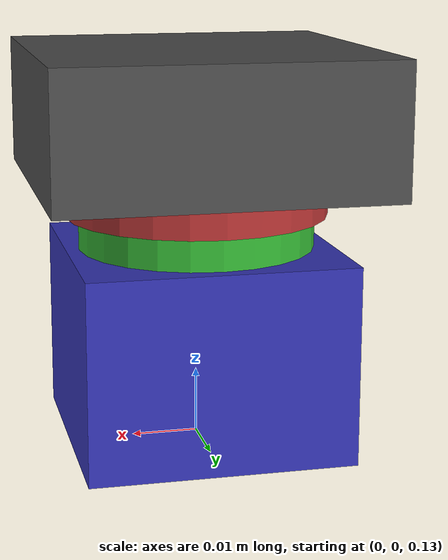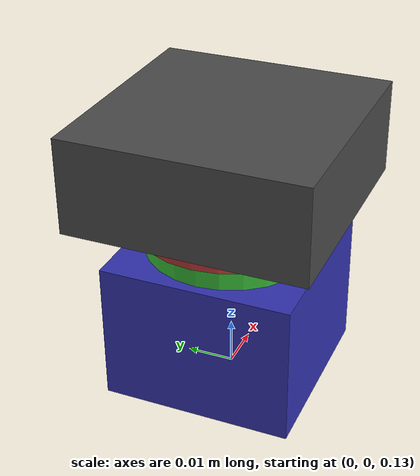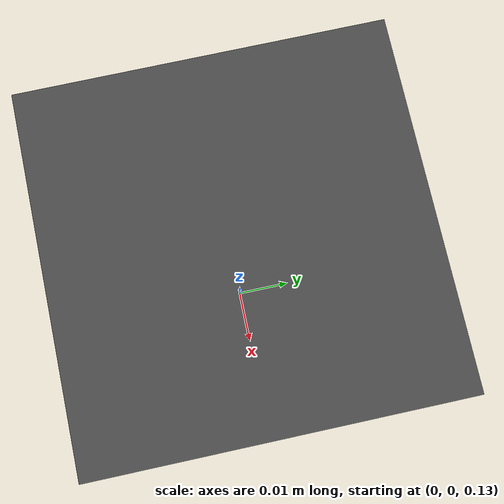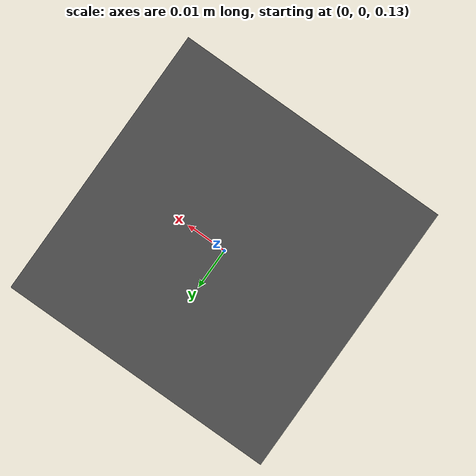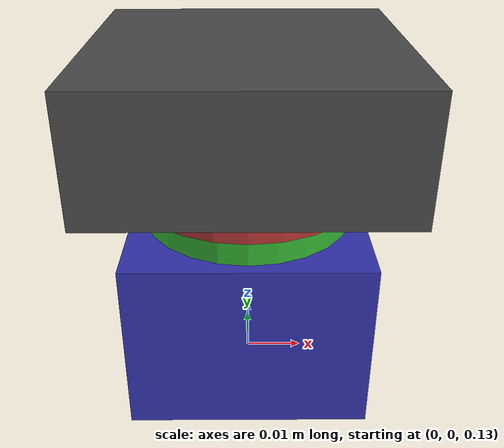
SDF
<?xml version="1.0"?>
<sdf version="1.9">
  <model name="gimbal_small_3d">
    <pose>0 0 0.18 0 0 0</pose>

    <!-- base_link: fixed attachment point -->
    <link name="base_link">
      <inertial>
        <mass>0.2</mass>
        <inertia>
          <ixx>0.0001</ixx><ixy>0</ixy><ixz>0</ixz>
          <iyy>0.0001</iyy><iyz>0</iyz><izz>0.0001</izz>
        </inertia>
      </inertial>
      <visual name="base_visual">
        <geometry><box><size>0.05 0.05 0.02</size></box></geometry>
        <material><ambient>0.2 0.2 0.2</ambient><diffuse>0.3 0.3 0.3</diffuse></material>
      </visual>
      <collision name="base_collision">
        <geometry><box><size>0.05 0.05 0.02</size></box></geometry>
      </collision>
    </link>

    <!-- yaw_link -->
    <link name="yaw_link">
      <pose>0 0 -0.01 0 0 0</pose>
      <inertial>
        <mass>0.01</mass>
        <inertia>
          <ixx>0.00001</ixx><ixy>0</ixy><ixz>0</ixz>
          <iyy>0.00001</iyy><iyz>0</iyz><izz>0.00001</izz>
        </inertia>
      </inertial>
      <visual name="yaw_visual">
        <geometry><cylinder><radius>0.02</radius><length>0.01</length></cylinder></geometry>
        <material><ambient>0.5 0.1 0.1</ambient><diffuse>0.7 0.2 0.2</diffuse></material>
      </visual>
    </link>

    <!-- roll_link -->
    <link name="roll_link">
      <pose>0 0 -0.02 0 0 0</pose>
      <inertial>
        <mass>0.01</mass>
        <inertia>
          <ixx>0.00001</ixx><ixy>0</ixy><ixz>0</ixz>
          <iyy>0.00001</iyy><iyz>0</iyz><izz>0.00001</izz>
        </inertia>
      </inertial>
      <visual name="roll_visual">
        <geometry><cylinder><radius>0.018</radius><length>0.01</length></cylinder></geometry>
        <material><ambient>0.1 0.5 0.1</ambient><diffuse>0.2 0.7 0.2</diffuse></material>
      </visual>
    </link>

    <!-- pitch_link: holds the camera sensor -->
    <link name="pitch_link">
      <pose>0 0 -0.035 0 0 0</pose>
      <inertial>
        <mass>0.05</mass>
        <inertia>
          <ixx>0.00001</ixx><ixy>0</ixy><ixz>0</ixz>
          <iyy>0.00001</iyy><iyz>0</iyz><izz>0.00001</izz>
        </inertia>
      </inertial>
      <visual name="pitch_visual">
        <geometry><box><size>0.04 0.04 0.03</size></box></geometry>
        <material><ambient>0.1 0.1 0.5</ambient><diffuse>0.2 0.2 0.7</diffuse></material>
      </visual>
      <collision name="pitch_collision">
        <geometry><box><size>0.04 0.04 0.03</size></box></geometry>
      </collision>

      <!-- Downward-facing camera -->
      <sensor name="camera" type="camera">
        <pose>0 0 -0.015 0 1.5707963 0</pose>
        <camera>
          <horizontal_fov>1.3962634</horizontal_fov>
          <image>
            <width>640</width>
            <height>480</height>
            <format>R8G8B8</format>
          </image>
          <clip>
            <near>0.05</near>
            <far>300</far>
          </clip>
        </camera>
        <always_on>1</always_on>
        <update_rate>30</update_rate>
        <visualize>false</visualize>
        <topic>/world/iris_runway/model/iris_with_gimbal/model/gimbal/link/pitch_link/sensor/camera/image</topic>
        <plugin
          filename="gz-sim-camera-video-recorder-system"
          name="gz::sim::systems::CameraVideoRecorder">
        </plugin>
      </sensor>
    </link>

    <!-- Joints -->
    <joint name="yaw_joint" type="revolute">
      <parent>base_link</parent>
      <child>yaw_link</child>
      <axis>
        <xyz>0 0 1</xyz>
        <limit><lower>-1.5707963</lower><upper>1.5707963</upper></limit>
        <dynamics><damping>0.5</damping></dynamics>
      </axis>
    </joint>

    <joint name="roll_joint" type="revolute">
      <parent>yaw_link</parent>
      <child>roll_link</child>
      <axis>
        <xyz>1 0 0</xyz>
        <limit><lower>-0.5236</lower><upper>0.5236</upper></limit>
        <dynamics><damping>0.5</damping></dynamics>
      </axis>
    </joint>

    <joint name="pitch_joint" type="revolute">
      <parent>roll_link</parent>
      <child>pitch_link</child>
      <axis>
        <xyz>0 1 0</xyz>
        <limit><lower>-1.5707963</lower><upper>0.5236</upper></limit>
        <dynamics><damping>0.5</damping></dynamics>
      </axis>
    </joint>

  </model>
</sdf>
